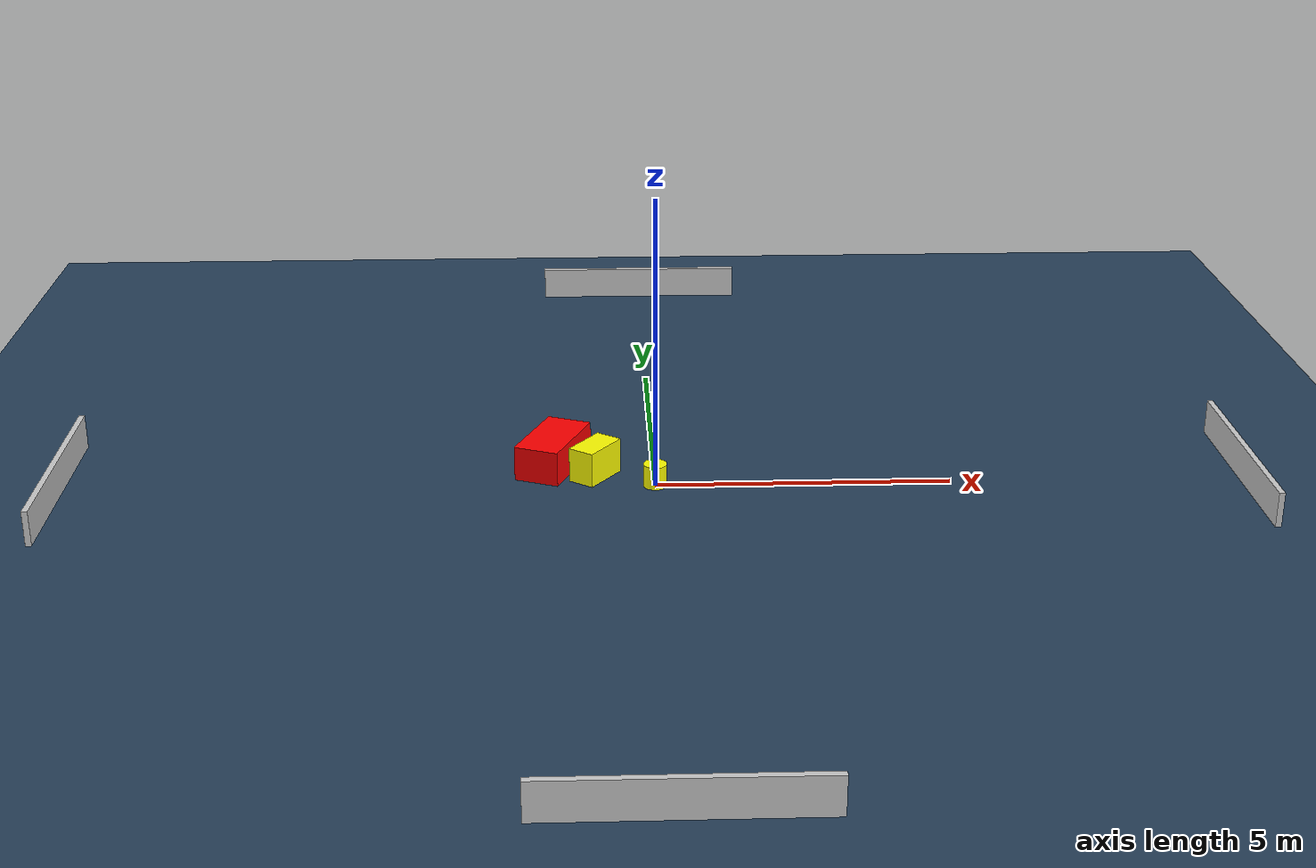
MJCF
<?xml version="1.0" ?>
<mujoco model="generated_environment">
  <option timestep="0.01" integrator="RK4" cone="elliptic"/>
  <default>
    <geom density="1"/>
  </default>
  <asset>
    <texture builtin="gradient" height="3072" name="skybox" rgb1="0.3 0.5 0.7" rgb2="0 0 0" type="skybox" width="512"/>
    <texture builtin="checker" height="300" name="groundplane" rgb1="0.2 0.3 0.4" rgb2="0.1 0.2 0.3" type="2d" width="300"/>
    <material name="groundplane" reflectance="0.2" texrepeat="5 5" texture="groundplane"/>
  </asset>
  <worldbody>
    <light dir="0 0 -1" directional="true" pos="0 0 1.5"/>
    <geom condim="3" friction="0.5 0.005 0.001" material="groundplane" name="floor" pos="0 0 0" size="0 0 0.05" type="plane"/>
    <body name="walls">
      <geom name="wall_1" condim="4" pos="-10.0 0.0 0.3" rgba="0.800000011920929 0.800000011920929 0.800000011920929 1.0" size="0.05 2.0 0.3" type="box"/>
      <geom name="wall_2" condim="4" pos="10.0 0.0 0.3" rgba="0.800000011920929 0.800000011920929 0.800000011920929 1.0" size="0.05 2.0 0.3" type="box"/>
      <geom name="wall_3" condim="4" pos="0.0 -10.0 0.3" rgba="0.800000011920929 0.800000011920929 0.800000011920929 1.0" size="2.0 0.05 0.3" type="box"/>
      <geom name="wall_4" condim="4" pos="0.0 10.0 0.3" rgba="0.800000011920929 0.800000011920929 0.800000011920929 1.0" size="2.0 0.05 0.3" type="box"/>
    </body>
    <body name="robot">
      <joint name="joint_x" type="slide" pos="0 0 0" axis="1 0 0"/>
      <joint name="joint_y" type="slide" pos="0 0 0" axis="0 1 0"/>
      <geom name="robot" type="cylinder" pos="0.0 0.0 0.2" size="0.2 0.2 0.0" mass="5.0" friction="1.0 0.005 0.0001" condim="4" rgba="1.0 1.0 0.0 1.0"/>
    </body>
    <body name="obstacle_1_movable">
      <geom name="obstacle_1_movable" condim="4" pos="-1.0110716695497437 0.43405265445599367 0.3" euler="0 0 234.02007127061782" friction="0.0 0.005 0.001" rgba="1.0 1.0 0.0 1.0" size="0.41914265714629106 0.23844899028826055 0.3" type="box" mass="0.1"/>
      <joint type="free"/>
    </body>
    <body name="obstacle_2_static">
      <geom name="obstacle_2_static" condim="4" pos="-1.7291481613042476 0.8507506207487787 0.3" euler="0 0 247.33719980431985" friction="0.0 0.005 0.001" rgba="1.0 0.0 0.0 1.0" size="0.7394275008554094 0.3945435809406216 0.3" type="box"/>
    </body>
  </worldbody>
  <actuator>
    <motor name="actuator_x" joint="joint_x" gear="1" ctrlrange="-1 1"/>
    <motor name="actuator_y" joint="joint_y" gear="1" ctrlrange="-1 1"/>
  </actuator>
</mujoco>
